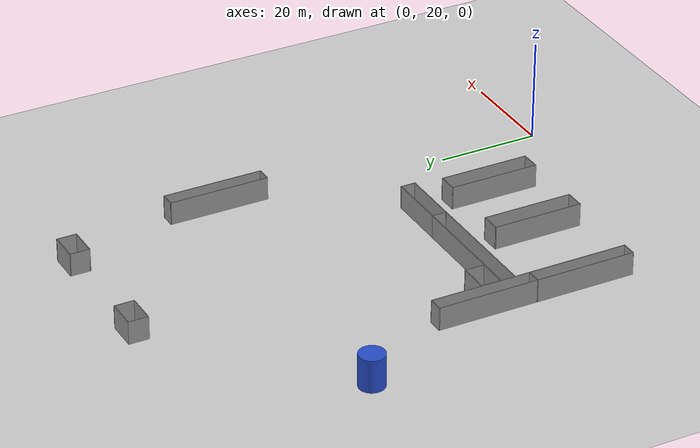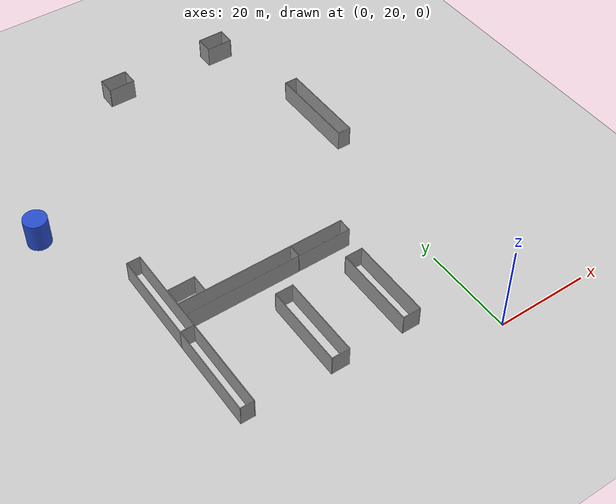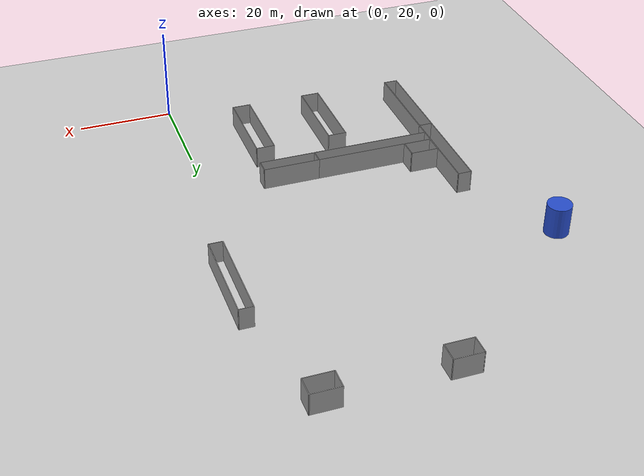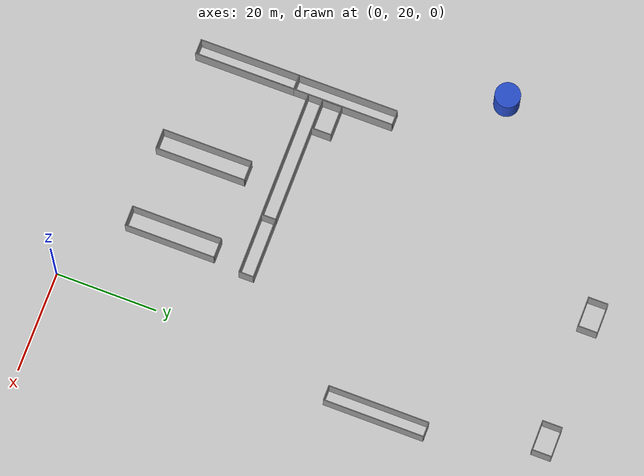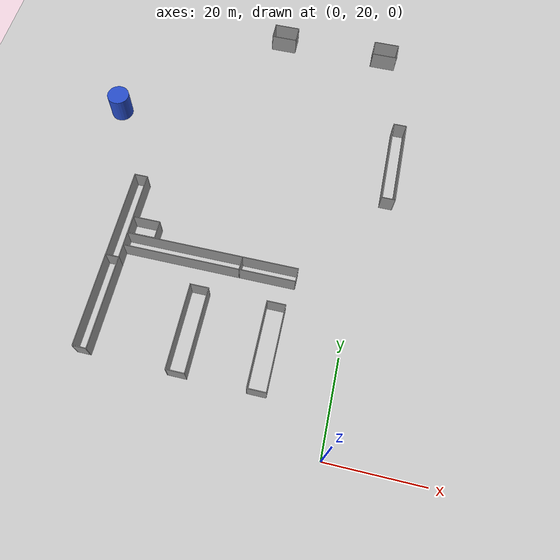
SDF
<sdf version="1.6">
 <world name="default">
  <model name="ground_plane">
   <static>1</static>
   <link name="link">
    <collision name="collision">
     <geometry><plane><normal>0 0 1</normal><size>320 320</size></plane></geometry>
     <surface>
      <contact><collide_bitmask>65535</collide_bitmask></contact>
      <friction><ode><mu>100</mu><mu2>50</mu2></ode></friction>
     </surface>
    </collision>
    <visual name="visual">
     <cast_shadows>0</cast_shadows>
     <geometry><plane><normal>0 0 1</normal><size>320 320</size></plane></geometry>
     <material>
      <script><uri>file://media/materials/scripts/gazebo.material</uri><name>Gazebo/Grey</name></script>
     </material>
    </visual>
   </link>
  </model>
  <model name="wall_v20m_2">
   <pose>-48.4412 39.4727 0 0 -0 0</pose>
   <link name="Wall_35">
    <collision name="Wall_35_Collision">
     <geometry><box><size>20 0.15 6.555</size></box></geometry>
     <pose>0 0 1.25 0 -0 0</pose>
    </collision>
    <visual name="Wall_35_Visual">
     <pose>0 0 1.25 0 -0 0</pose>
     <geometry><box><size>20 0.15 6.555</size></box></geometry>
     <material>
      <script><uri>file://media/materials/scripts/gazebo.material</uri><name>Gazebo/Grey</name></script>
      <ambient>1 1 1 1</ambient>
     </material>
     <meta><layer>0</layer></meta>
    </visual>
    <pose>0 -0 0 0 -0 -1.5708</pose>
   </link>
   <static>1</static>
  </model>
  <model name="wall_25m_3">
   <pose>-35.9958 55.2578 0 0 -0 0</pose>
   <link name="Wall_28">
    <collision name="Wall_28_Collision">
     <geometry><box><size>25 0.15 6.555</size></box></geometry>
     <pose>0 0 1.25 0 -0 0</pose>
    </collision>
    <visual name="Wall_28_Visual">
     <pose>0 0 1.25 0 -0 0</pose>
     <geometry><box><size>25 0.15 6.555</size></box></geometry>
     <material>
      <script><uri>file://media/materials/scripts/gazebo.material</uri><name>Gazebo/Grey</name></script>
      <ambient>1 1 1 1</ambient>
     </material>
     <meta><layer>0</layer></meta>
    </visual>
   </link>
   <static>1</static>
  </model>
  <model name="wall_25m_4">
   <pose>-36.0189 52.3876 0 0 -0 0</pose>
   <link name="Wall_28">
    <collision name="Wall_28_Collision">
     <geometry><box><size>25 0.15 6.555</size></box></geometry>
     <pose>0 0 1.25 0 -0 0</pose>
    </collision>
    <visual name="Wall_28_Visual">
     <pose>0 0 1.25 0 -0 0</pose>
     <geometry><box><size>25 0.15 6.555</size></box></geometry>
     <material>
      <script><uri>file://media/materials/scripts/gazebo.material</uri><name>Gazebo/Grey</name></script>
      <ambient>1 1 1 1</ambient>
     </material>
     <meta><layer>0</layer></meta>
    </visual>
   </link>
   <static>1</static>
  </model>
  <model name="base18x4_3">
   <pose>-30.4275 38.1058 0 0 -0 0</pose>
   <link name="Wall_6">
    <collision name="Wall_6_Collision">
     <geometry><box><size>18 0.15 6.555</size></box></geometry>
     <pose>0 0 1.25 0 -0 0</pose>
    </collision>
    <visual name="Wall_6_Visual">
     <pose>0 0 1.25 0 -0 0</pose>
     <geometry><box><size>18 0.15 6.555</size></box></geometry>
     <material>
      <script><uri>file://media/materials/scripts/gazebo.material</uri><name>Gazebo/Grey</name></script>
      <ambient>1 1 1 1</ambient>
     </material>
     <meta><layer>0</layer></meta>
    </visual>
    <pose>-1.925 0 0 0 -0 -1.5708</pose>
   </link>
   <link name="Wall_7">
    <collision name="Wall_7_Collision">
     <geometry><box><size>4 0.15 6.555</size></box></geometry>
     <pose>0 0 1.25 0 -0 0</pose>
    </collision>
    <visual name="Wall_7_Visual">
     <pose>0 0 1.25 0 -0 0</pose>
     <geometry><box><size>4 0.15 6.555</size></box></geometry>
     <material>
      <script><uri>file://media/materials/scripts/gazebo.material</uri><name>Gazebo/Grey</name></script>
      <ambient>1 1 1 1</ambient>
     </material>
     <meta><layer>0</layer></meta>
    </visual>
    <pose>0 -8.925 0 0 -0 0</pose>
   </link>
   <link name="Wall_8">
    <collision name="Wall_8_Collision">
     <geometry><box><size>18 0.15 6.555</size></box></geometry>
     <pose>0 0 1.25 0 -0 0</pose>
    </collision>
    <visual name="Wall_8_Visual">
     <pose>0 0 1.25 0 -0 0</pose>
     <geometry><box><size>18 0.15 6.555</size></box></geometry>
     <material>
      <script><uri>file://media/materials/scripts/gazebo.material</uri><name>Gazebo/Grey</name></script>
      <ambient>1 1 1 1</ambient>
     </material>
     <meta><layer>0</layer></meta>
    </visual>
    <pose>1.925 0 0 0 -0 1.5708</pose>
   </link>
   <link name="Wall_9">
    <collision name="Wall_9_Collision">
     <geometry><box><size>4 0.15 6.555</size></box></geometry>
     <pose>0 0 1.25 0 -0 0</pose>
    </collision>
    <visual name="Wall_9_Visual">
     <pose>0 0 1.25 0 -0 0</pose>
     <geometry><box><size>4 0.15 6.555</size></box></geometry>
     <material>
      <script><uri>file://media/materials/scripts/gazebo.material</uri><name>Gazebo/Grey</name></script>
      <ambient>1 1 1 1</ambient>
     </material>
     <meta><layer>0</layer></meta>
    </visual>
    <pose>0 8.925 0 0 -0 3.14159</pose>
   </link>
   <static>1</static>
  </model>
  <model name="base3x12">
   <pose>-17.4947 53.8326 0 0 -0 0</pose>
   <link name="Wall_0">
    <collision name="Wall_0_Collision">
     <geometry><box><size>3 0.15 6.555</size></box></geometry>
     <pose>0 0 1.25 0 -0 0</pose>
    </collision>
    <visual name="Wall_0_Visual">
     <pose>0 0 1.25 0 -0 0</pose>
     <geometry><box><size>3 0.15 6.555</size></box></geometry>
     <material>
      <script><uri>file://media/materials/scripts/gazebo.material</uri><name>Gazebo/Grey</name></script>
      <ambient>1 1 1 1</ambient>
     </material>
     <meta><layer>0</layer></meta>
    </visual>
    <pose>-5.925 0 0 0 -0 -1.5708</pose>
   </link>
   <link name="Wall_1">
    <collision name="Wall_1_Collision">
     <geometry><box><size>12 0.15 6.555</size></box></geometry>
     <pose>0 0 1.25 0 -0 0</pose>
    </collision>
    <visual name="Wall_1_Visual">
     <pose>0 0 1.25 0 -0 0</pose>
     <geometry><box><size>12 0.15 6.555</size></box></geometry>
     <material>
      <script><uri>file://media/materials/scripts/gazebo.material</uri><name>Gazebo/Grey</name></script>
      <ambient>1 1 1 1</ambient>
     </material>
     <meta><layer>0</layer></meta>
    </visual>
    <pose>0 -1.425 0 0 -0 0</pose>
   </link>
   <link name="Wall_2">
    <collision name="Wall_2_Collision">
     <geometry><box><size>3 0.15 6.555</size></box></geometry>
     <pose>0 0 1.25 0 -0 0</pose>
    </collision>
    <visual name="Wall_2_Visual">
     <pose>0 0 1.25 0 -0 0</pose>
     <geometry><box><size>3 0.15 6.555</size></box></geometry>
     <material>
      <script><uri>file://media/materials/scripts/gazebo.material</uri><name>Gazebo/Grey</name></script>
      <ambient>1 1 1 1</ambient>
     </material>
     <meta><layer>0</layer></meta>
    </visual>
    <pose>5.925 0 0 0 -0 1.5708</pose>
   </link>
   <link name="Wall_3">
    <collision name="Wall_3_Collision">
     <geometry><box><size>12 0.15 6.555</size></box></geometry>
     <pose>0 0 1.25 0 -0 0</pose>
    </collision>
    <visual name="Wall_3_Visual">
     <pose>0 0 1.25 0 -0 0</pose>
     <geometry><box><size>12 0.15 6.555</size></box></geometry>
     <material>
      <script><uri>file://media/materials/scripts/gazebo.material</uri><name>Gazebo/Grey</name></script>
      <ambient>1 1 1 1</ambient>
     </material>
     <meta><layer>0</layer></meta>
    </visual>
    <pose>0 1.425 0 0 -0 3.14159</pose>
   </link>
   <static>1</static>
  </model>
  <model name="base18x4_4">
   <pose>-14.4191 38.0948 0 0 -0 0</pose>
   <link name="Wall_6">
    <collision name="Wall_6_Collision">
     <geometry><box><size>18 0.15 6.555</size></box></geometry>
     <pose>0 0 1.25 0 -0 0</pose>
    </collision>
    <visual name="Wall_6_Visual">
     <pose>0 0 1.25 0 -0 0</pose>
     <geometry><box><size>18 0.15 6.555</size></box></geometry>
     <material>
      <script><uri>file://media/materials/scripts/gazebo.material</uri><name>Gazebo/Grey</name></script>
      <ambient>1 1 1 1</ambient>
     </material>
     <meta><layer>0</layer></meta>
    </visual>
    <pose>-1.925 0 0 0 -0 -1.5708</pose>
   </link>
   <link name="Wall_7">
    <collision name="Wall_7_Collision">
     <geometry><box><size>4 0.15 6.555</size></box></geometry>
     <pose>0 0 1.25 0 -0 0</pose>
    </collision>
    <visual name="Wall_7_Visual">
     <pose>0 0 1.25 0 -0 0</pose>
     <geometry><box><size>4 0.15 6.555</size></box></geometry>
     <material>
      <script><uri>file://media/materials/scripts/gazebo.material</uri><name>Gazebo/Grey</name></script>
      <ambient>1 1 1 1</ambient>
     </material>
     <meta><layer>0</layer></meta>
    </visual>
    <pose>0 -8.925 0 0 -0 0</pose>
   </link>
   <link name="Wall_8">
    <collision name="Wall_8_Collision">
     <geometry><box><size>18 0.15 6.555</size></box></geometry>
     <pose>0 0 1.25 0 -0 0</pose>
    </collision>
    <visual name="Wall_8_Visual">
     <pose>0 0 1.25 0 -0 0</pose>
     <geometry><box><size>18 0.15 6.555</size></box></geometry>
     <material>
      <script><uri>file://media/materials/scripts/gazebo.material</uri><name>Gazebo/Grey</name></script>
      <ambient>1 1 1 1</ambient>
     </material>
     <meta><layer>0</layer></meta>
    </visual>
    <pose>1.925 0 0 0 -0 1.5708</pose>
   </link>
   <link name="Wall_9">
    <collision name="Wall_9_Collision">
     <geometry><box><size>4 0.15 6.555</size></box></geometry>
     <pose>0 0 1.25 0 -0 0</pose>
    </collision>
    <visual name="Wall_9_Visual">
     <pose>0 0 1.25 0 -0 0</pose>
     <geometry><box><size>4 0.15 6.555</size></box></geometry>
     <material>
      <script><uri>file://media/materials/scripts/gazebo.material</uri><name>Gazebo/Grey</name></script>
      <ambient>1 1 1 1</ambient>
     </material>
     <meta><layer>0</layer></meta>
    </visual>
    <pose>0 8.925 0 0 -0 3.14159</pose>
   </link>
   <static>1</static>
  </model>
  <model name="base4x6_3">
   <pose>-1.95441 117.365 0 0 -0 0</pose>
   <link name="Wall_23">
    <collision name="Wall_23_Collision">
     <geometry><box><size>4 0.15 6.555</size></box></geometry>
     <pose>0 0 1.25 0 -0 0</pose>
    </collision>
    <visual name="Wall_23_Visual">
     <pose>0 0 1.25 0 -0 0</pose>
     <geometry><box><size>4 0.15 6.555</size></box></geometry>
     <material>
      <script><uri>file://media/materials/scripts/gazebo.material</uri><name>Gazebo/Grey</name></script>
      <ambient>1 1 1 1</ambient>
     </material>
     <meta><layer>0</layer></meta>
    </visual>
    <pose>-2.925 0 0 0 -0 -1.5708</pose>
   </link>
   <link name="Wall_24">
    <collision name="Wall_24_Collision">
     <geometry><box><size>6 0.15 6.555</size></box></geometry>
     <pose>0 0 1.25 0 -0 0</pose>
    </collision>
    <visual name="Wall_24_Visual">
     <pose>0 0 1.25 0 -0 0</pose>
     <geometry><box><size>6 0.15 6.555</size></box></geometry>
     <material>
      <script><uri>file://media/materials/scripts/gazebo.material</uri><name>Gazebo/Grey</name></script>
      <ambient>1 1 1 1</ambient>
     </material>
     <meta><layer>0</layer></meta>
    </visual>
    <pose>-0 -1.925 0 0 -0 0</pose>
   </link>
   <link name="Wall_25">
    <collision name="Wall_25_Collision">
     <geometry><box><size>4 0.15 6.555</size></box></geometry>
     <pose>0 0 1.25 0 -0 0</pose>
    </collision>
    <visual name="Wall_25_Visual">
     <pose>0 0 1.25 0 -0 0</pose>
     <geometry><box><size>4 0.15 6.555</size></box></geometry>
     <material>
      <script><uri>file://media/materials/scripts/gazebo.material</uri><name>Gazebo/Grey</name></script>
      <ambient>1 1 1 1</ambient>
     </material>
     <meta><layer>0</layer></meta>
    </visual>
    <pose>2.925 0 0 0 -0 1.5708</pose>
   </link>
   <link name="Wall_26">
    <collision name="Wall_26_Collision">
     <geometry><box><size>6 0.15 6.555</size></box></geometry>
     <pose>0 0 1.25 0 -0 0</pose>
    </collision>
    <visual name="Wall_26_Visual">
     <pose>0 0 1.25 0 -0 0</pose>
     <geometry><box><size>6 0.15 6.555</size></box></geometry>
     <material>
      <script><uri>file://media/materials/scripts/gazebo.material</uri><name>Gazebo/Grey</name></script>
      <ambient>1 1 1 1</ambient>
     </material>
     <meta><layer>0</layer></meta>
    </visual>
    <pose>-0 1.925 0 0 -0 3.14159</pose>
   </link>
   <static>1</static>
  </model>
  <model name="base4x6_4">
   <pose>-27.1346 117.356 0 0 -0 0</pose>
   <link name="Wall_23">
    <collision name="Wall_23_Collision">
     <geometry><box><size>4 0.15 6.555</size></box></geometry>
     <pose>0 0 1.25 0 -0 0</pose>
    </collision>
    <visual name="Wall_23_Visual">
     <pose>0 0 1.25 0 -0 0</pose>
     <geometry><box><size>4 0.15 6.555</size></box></geometry>
     <material>
      <script><uri>file://media/materials/scripts/gazebo.material</uri><name>Gazebo/Grey</name></script>
      <ambient>1 1 1 1</ambient>
     </material>
     <meta><layer>0</layer></meta>
    </visual>
    <pose>-2.925 0 0 0 -0 -1.5708</pose>
   </link>
   <link name="Wall_24">
    <collision name="Wall_24_Collision">
     <geometry><box><size>6 0.15 6.555</size></box></geometry>
     <pose>0 0 1.25 0 -0 0</pose>
    </collision>
    <visual name="Wall_24_Visual">
     <pose>0 0 1.25 0 -0 0</pose>
     <geometry><box><size>6 0.15 6.555</size></box></geometry>
     <material>
      <script><uri>file://media/materials/scripts/gazebo.material</uri><name>Gazebo/Grey</name></script>
      <ambient>1 1 1 1</ambient>
     </material>
     <meta><layer>0</layer></meta>
    </visual>
    <pose>-0 -1.925 0 0 -0 0</pose>
   </link>
   <link name="Wall_25">
    <collision name="Wall_25_Collision">
     <geometry><box><size>4 0.15 6.555</size></box></geometry>
     <pose>0 0 1.25 0 -0 0</pose>
    </collision>
    <visual name="Wall_25_Visual">
     <pose>0 0 1.25 0 -0 0</pose>
     <geometry><box><size>4 0.15 6.555</size></box></geometry>
     <material>
      <script><uri>file://media/materials/scripts/gazebo.material</uri><name>Gazebo/Grey</name></script>
      <ambient>1 1 1 1</ambient>
     </material>
     <meta><layer>0</layer></meta>
    </visual>
    <pose>2.925 0 0 0 -0 1.5708</pose>
   </link>
   <link name="Wall_26">
    <collision name="Wall_26_Collision">
     <geometry><box><size>6 0.15 6.555</size></box></geometry>
     <pose>0 0 1.25 0 -0 0</pose>
    </collision>
    <visual name="Wall_26_Visual">
     <pose>0 0 1.25 0 -0 0</pose>
     <geometry><box><size>6 0.15 6.555</size></box></geometry>
     <material>
      <script><uri>file://media/materials/scripts/gazebo.material</uri><name>Gazebo/Grey</name></script>
      <ambient>1 1 1 1</ambient>
     </material>
     <meta><layer>0</layer></meta>
    </visual>
    <pose>-0 1.925 0 0 -0 3.14159</pose>
   </link>
   <static>1</static>
  </model>
  <model name="base20x3_2">
   <pose>4.36061 85.7861 0 0 -0 0</pose>
   <link name="Wall_21">
    <collision name="Wall_21_Collision">
     <geometry><box><size>20 0.15 6.555</size></box></geometry>
     <pose>0 0 1.25 0 -0 0</pose>
    </collision>
    <visual name="Wall_21_Visual">
     <pose>0 0 1.25 0 -0 0</pose>
     <geometry><box><size>20 0.15 6.555</size></box></geometry>
     <material>
      <script><uri>file://media/materials/scripts/gazebo.material</uri><name>Gazebo/Grey</name></script>
      <ambient>1 1 1 1</ambient>
     </material>
     <meta><layer>0</layer></meta>
    </visual>
    <pose>-1.425 -0 0 0 -0 -1.5708</pose>
   </link>
   <link name="Wall_22">
    <collision name="Wall_22_Collision">
     <geometry><box><size>3 0.15 6.555</size></box></geometry>
     <pose>0 0 1.25 0 -0 0</pose>
    </collision>
    <visual name="Wall_22_Visual">
     <pose>0 0 1.25 0 -0 0</pose>
     <geometry><box><size>3 0.15 6.555</size></box></geometry>
     <material>
      <script><uri>file://media/materials/scripts/gazebo.material</uri><name>Gazebo/Grey</name></script>
      <ambient>1 1 1 1</ambient>
     </material>
     <meta><layer>0</layer></meta>
    </visual>
    <pose>-0 -9.925 0 0 -0 0</pose>
   </link>
   <link name="Wall_23">
    <collision name="Wall_23_Collision">
     <geometry><box><size>20 0.15 6.555</size></box></geometry>
     <pose>0 0 1.25 0 -0 0</pose>
    </collision>
    <visual name="Wall_23_Visual">
     <pose>0 0 1.25 0 -0 0</pose>
     <geometry><box><size>20 0.15 6.555</size></box></geometry>
     <material>
      <script><uri>file://media/materials/scripts/gazebo.material</uri><name>Gazebo/Grey</name></script>
      <ambient>1 1 1 1</ambient>
     </material>
     <meta><layer>0</layer></meta>
    </visual>
    <pose>1.425 -0 0 0 -0 1.5708</pose>
   </link>
   <link name="Wall_24">
    <collision name="Wall_24_Collision">
     <geometry><box><size>3 0.15 6.555</size></box></geometry>
     <pose>0 0 1.25 0 -0 0</pose>
    </collision>
    <visual name="Wall_24_Visual">
     <pose>0 0 1.25 0 -0 0</pose>
     <geometry><box><size>3 0.15 6.555</size></box></geometry>
     <material>
      <script><uri>file://media/materials/scripts/gazebo.material</uri><name>Gazebo/Grey</name></script>
      <ambient>1 1 1 1</ambient>
     </material>
     <meta><layer>0</layer></meta>
    </visual>
    <pose>-0 9.925 0 0 -0 3.14159</pose>
   </link>
   <static>1</static>
  </model>
  <model name="base4x6_12">
   <pose>-45.4269 57.2538 0 0 -0 0</pose>
   <link name="Wall_23">
    <collision name="Wall_23_Collision">
     <geometry><box><size>4 0.15 6.555</size></box></geometry>
     <pose>0 0 1.25 0 -0 0</pose>
    </collision>
    <visual name="Wall_23_Visual">
     <pose>0 0 1.25 0 -0 0</pose>
     <geometry><box><size>4 0.15 6.555</size></box></geometry>
     <material>
      <script><uri>file://media/materials/scripts/gazebo.material</uri><name>Gazebo/Grey</name></script>
      <ambient>1 1 1 1</ambient>
     </material>
     <meta><layer>0</layer></meta>
    </visual>
    <pose>-2.925 0 0 0 -0 -1.5708</pose>
   </link>
   <link name="Wall_24">
    <collision name="Wall_24_Collision">
     <geometry><box><size>6 0.15 6.555</size></box></geometry>
     <pose>0 0 1.25 0 -0 0</pose>
    </collision>
    <visual name="Wall_24_Visual">
     <pose>0 0 1.25 0 -0 0</pose>
     <geometry><box><size>6 0.15 6.555</size></box></geometry>
     <material>
      <script><uri>file://media/materials/scripts/gazebo.material</uri><name>Gazebo/Grey</name></script>
      <ambient>1 1 1 1</ambient>
     </material>
     <meta><layer>0</layer></meta>
    </visual>
    <pose>-0 -1.925 0 0 -0 0</pose>
   </link>
   <link name="Wall_25">
    <collision name="Wall_25_Collision">
     <geometry><box><size>4 0.15 6.555</size></box></geometry>
     <pose>0 0 1.25 0 -0 0</pose>
    </collision>
    <visual name="Wall_25_Visual">
     <pose>0 0 1.25 0 -0 0</pose>
     <geometry><box><size>4 0.15 6.555</size></box></geometry>
     <material>
      <script><uri>file://media/materials/scripts/gazebo.material</uri><name>Gazebo/Grey</name></script>
      <ambient>1 1 1 1</ambient>
     </material>
     <meta><layer>0</layer></meta>
    </visual>
    <pose>2.925 0 0 0 -0 1.5708</pose>
   </link>
   <link name="Wall_26">
    <collision name="Wall_26_Collision">
     <geometry><box><size>6 0.15 6.555</size></box></geometry>
     <pose>0 0 1.25 0 -0 0</pose>
    </collision>
    <visual name="Wall_26_Visual">
     <pose>0 0 1.25 0 -0 0</pose>
     <geometry><box><size>6 0.15 6.555</size></box></geometry>
     <material>
      <script><uri>file://media/materials/scripts/gazebo.material</uri><name>Gazebo/Grey</name></script>
      <ambient>1 1 1 1</ambient>
     </material>
     <meta><layer>0</layer></meta>
    </visual>
    <pose>-0 1.925 0 0 -0 3.14159</pose>
   </link>
   <static>1</static>
  </model>
  <model name="unit_cylinder_r2.5_l1_clone_0">
   <link name="link">
    <inertial>
     <mass>1</mass>
     <inertia><ixx>0.145833</ixx><ixy>0</ixy><ixz>0</ixz><iyy>0.145833</iyy><iyz>0</iyz><izz>0.125</izz></inertia>
    </inertial>
    <visual name="visual">
     <geometry><cylinder><radius>2.5</radius><length>6.555</length></cylinder></geometry>
     <material>
      <script><name>Gazebo/Blue</name><uri>file://media/materials/scripts/gazebo.material</uri></script>
      <shader type="vertex"><normal_map>__default__</normal_map></shader>
      <ambient>0.3 0.3 0.3 1</ambient>
      <diffuse>0.7 0.7 0.7 1</diffuse>
      <specular>0.01 0.01 0.01 1</specular>
      <emissive>0 0 0 1</emissive>
     </material>
    </visual>
    <collision name="collision">
     <geometry><cylinder><radius>2.5</radius><length>6.555</length></cylinder></geometry>
     <surface>
      <friction>
       <ode><mu>1</mu><mu2>1</mu2><fdir1>0 0 0</fdir1><slip1>0</slip1><slip2>0</slip2></ode>
       <torsional>
        <coefficient>1</coefficient>
        <patch_radius>0</patch_radius>
        <surface_radius>0</surface_radius>
        <use_patch_radius>1</use_patch_radius>
        <ode><slip>0</slip></ode>
       </torsional>
      </friction>
      <bounce><restitution_coefficient>0</restitution_coefficient><threshold>1e+06</threshold></bounce>
      <contact>
       <collide_without_contact>0</collide_without_contact>
       <collide_without_contact_bitmask>1</collide_without_contact_bitmask>
       <collide_bitmask>1</collide_bitmask>
       <ode>
        <soft_cfm>0</soft_cfm>
        <soft_erp>0.2</soft_erp>
        <kp>1e+13</kp>
        <kd>1</kd>
        <max_vel>0.01</max_vel>
        <min_depth>0</min_depth>
       </ode>
       <bullet>
        <split_impulse>1</split_impulse>
        <split_impulse_penetration_threshold>-0.01</split_impulse_penetration_threshold>
        <soft_cfm>0</soft_cfm>
        <soft_erp>0.2</soft_erp>
        <kp>1e+13</kp>
        <kd>1</kd>
       </bullet>
      </contact>
     </surface>
    </collision>
   </link>
   <static>0</static>
   <pose>-61.0486 87.9102 3.27733 5.6e-05 5.4e-05 -1.8e-05</pose>
  </model>
  <model name="base20x3">
   <pose>-49.878 59.3963 0 0 -0 0</pose>
   <link name="Wall_21">
    <collision name="Wall_21_Collision">
     <geometry><box><size>20 0.15 6.555</size></box></geometry>
     <pose>0 0 1.25 0 -0 0</pose>
    </collision>
    <visual name="Wall_21_Visual">
     <pose>0 0 1.25 0 -0 0</pose>
     <geometry><box><size>20 0.15 6.555</size></box></geometry>
     <material>
      <script><uri>file://media/materials/scripts/gazebo.material</uri><name>Gazebo/Grey</name></script>
      <ambient>1 1 1 1</ambient>
     </material>
     <meta><layer>0</layer></meta>
    </visual>
    <pose>-1.425 -0 0 0 -0 -1.5708</pose>
   </link>
   <link name="Wall_22">
    <collision name="Wall_22_Collision">
     <geometry><box><size>3 0.15 6.555</size></box></geometry>
     <pose>0 0 1.25 0 -0 0</pose>
    </collision>
    <visual name="Wall_22_Visual">
     <pose>0 0 1.25 0 -0 0</pose>
     <geometry><box><size>3 0.15 6.555</size></box></geometry>
     <material>
      <script><uri>file://media/materials/scripts/gazebo.material</uri><name>Gazebo/Grey</name></script>
      <ambient>1 1 1 1</ambient>
     </material>
     <meta><layer>0</layer></meta>
    </visual>
    <pose>-0 -9.925 0 0 -0 0</pose>
   </link>
   <link name="Wall_23">
    <collision name="Wall_23_Collision">
     <geometry><box><size>20 0.15 6.555</size></box></geometry>
     <pose>0 0 1.25 0 -0 0</pose>
    </collision>
    <visual name="Wall_23_Visual">
     <pose>0 0 1.25 0 -0 0</pose>
     <geometry><box><size>20 0.15 6.555</size></box></geometry>
     <material>
      <script><uri>file://media/materials/scripts/gazebo.material</uri><name>Gazebo/Grey</name></script>
      <ambient>1 1 1 1</ambient>
     </material>
     <meta><layer>0</layer></meta>
    </visual>
    <pose>1.425 -0 0 0 -0 1.5708</pose>
   </link>
   <link name="Wall_24">
    <collision name="Wall_24_Collision">
     <geometry><box><size>3 0.15 6.555</size></box></geometry>
     <pose>0 0 1.25 0 -0 0</pose>
    </collision>
    <visual name="Wall_24_Visual">
     <pose>0 0 1.25 0 -0 0</pose>
     <geometry><box><size>3 0.15 6.555</size></box></geometry>
     <material>
      <script><uri>file://media/materials/scripts/gazebo.material</uri><name>Gazebo/Grey</name></script>
      <ambient>1 1 1 1</ambient>
     </material>
     <meta><layer>0</layer></meta>
    </visual>
    <pose>-0 9.925 0 0 -0 3.14159</pose>
   </link>
   <static>1</static>
  </model>
  <model name="base20x3_clone">
   <pose>-49.8946 39.5055 0 0 -0 0</pose>
   <link name="Wall_21">
    <collision name="Wall_21_Collision">
     <geometry><box><size>20 0.15 6.555</size></box></geometry>
     <pose>0 0 1.25 0 -0 0</pose>
    </collision>
    <visual name="Wall_21_Visual">
     <pose>0 0 1.25 0 -0 0</pose>
     <geometry><box><size>20 0.15 6.555</size></box></geometry>
     <material>
      <script><uri>file://media/materials/scripts/gazebo.material</uri><name>Gazebo/Grey</name></script>
      <ambient>1 1 1 1</ambient>
     </material>
     <meta><layer>0</layer></meta>
    </visual>
    <pose>-1.425 -0 0 0 -0 -1.5708</pose>
   </link>
   <link name="Wall_22">
    <collision name="Wall_22_Collision">
     <geometry><box><size>3 0.15 6.555</size></box></geometry>
     <pose>0 0 1.25 0 -0 0</pose>
    </collision>
    <visual name="Wall_22_Visual">
     <pose>0 0 1.25 0 -0 0</pose>
     <geometry><box><size>3 0.15 6.555</size></box></geometry>
     <material>
      <script><uri>file://media/materials/scripts/gazebo.material</uri><name>Gazebo/Grey</name></script>
      <ambient>1 1 1 1</ambient>
     </material>
     <meta><layer>0</layer></meta>
    </visual>
    <pose>-0 -9.925 0 0 -0 0</pose>
   </link>
   <link name="Wall_23">
    <collision name="Wall_23_Collision">
     <geometry><box><size>20 0.15 6.555</size></box></geometry>
     <pose>0 0 1.25 0 -0 0</pose>
    </collision>
    <visual name="Wall_23_Visual">
     <pose>0 0 1.25 0 -0 0</pose>
     <geometry><box><size>20 0.15 6.555</size></box></geometry>
     <material>
      <script><uri>file://media/materials/scripts/gazebo.material</uri><name>Gazebo/Grey</name></script>
      <ambient>1 1 1 1</ambient>
     </material>
     <meta><layer>0</layer></meta>
    </visual>
    <pose>1.425 -0 0 0 -0 1.5708</pose>
   </link>
   <link name="Wall_24">
    <collision name="Wall_24_Collision">
     <geometry><box><size>3 0.15 6.555</size></box></geometry>
     <pose>0 0 1.25 0 -0 0</pose>
    </collision>
    <visual name="Wall_24_Visual">
     <pose>0 0 1.25 0 -0 0</pose>
     <geometry><box><size>3 0.15 6.555</size></box></geometry>
     <material>
      <script><uri>file://media/materials/scripts/gazebo.material</uri><name>Gazebo/Grey</name></script>
      <ambient>1 1 1 1</ambient>
     </material>
     <meta><layer>0</layer></meta>
    </visual>
    <pose>-0 9.925 0 0 -0 3.14159</pose>
   </link>
   <static>1</static>
  </model>
 </world>
</sdf>
